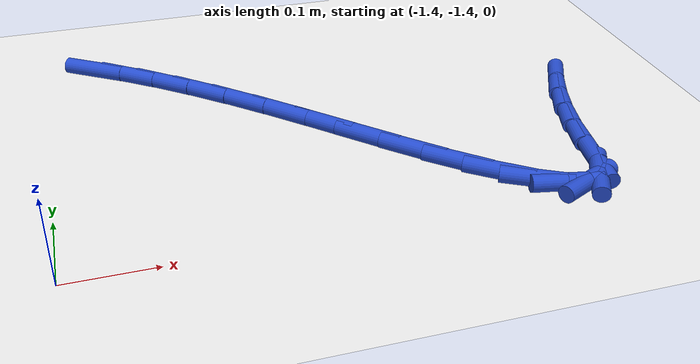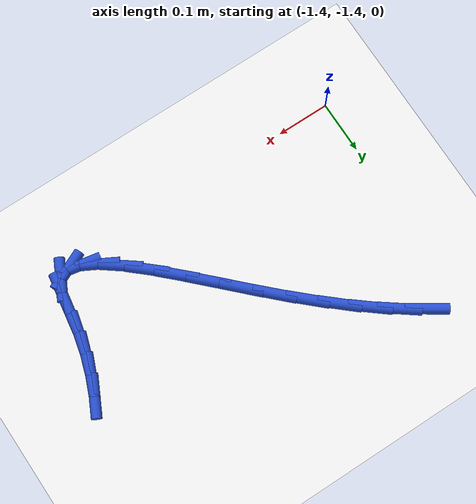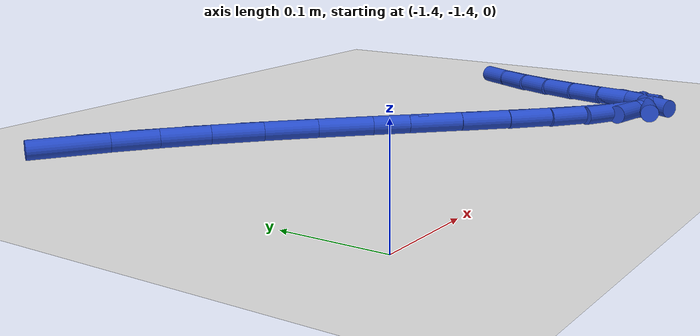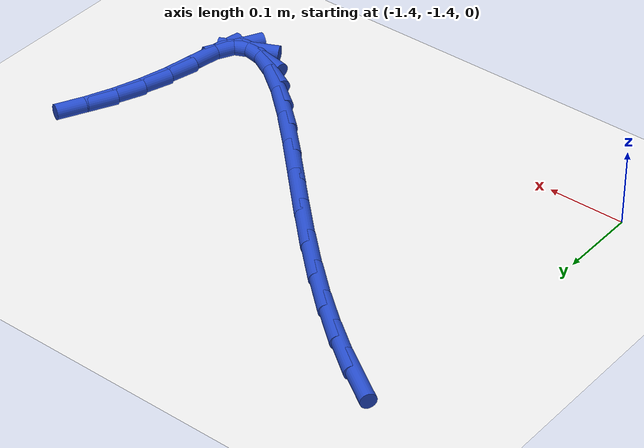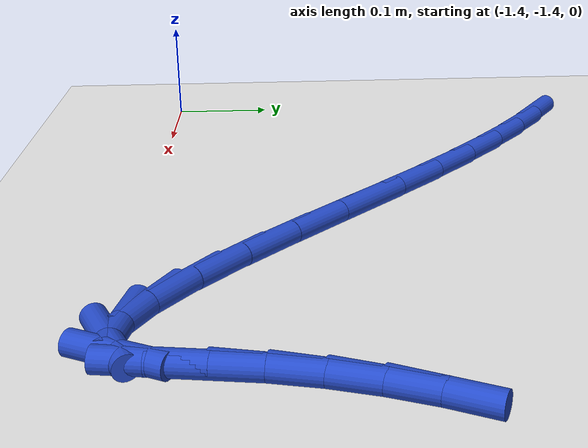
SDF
<sdf version="1.6">
 <world name="default">
  <model name="ground_plane">
   <static>1</static>
   <link name="link">
    <collision name="collision">
     <geometry><plane><normal>0 0 1</normal><size>100 100</size></plane></geometry>
     <surface><friction><ode><mu>100</mu><mu2>50</mu2></ode></friction></surface>
    </collision>
    <visual name="visual">
     <cast_shadows>0</cast_shadows>
     <geometry><plane><normal>0 0 1</normal><size>100 100</size></plane></geometry>
     <material>
      <script><uri>file://media/materials/scripts/gazebo.material</uri><name>Gazebo/WhiteGlow</name></script>
     </material>
    </visual>
   </link>
  </model>
  <model name="line">
   <link name="link_192">
    <pose>-1.3355050333427825 -0.9855317868970247 0.01 0 1.57 -0.5854688777693408</pose>
    <collision name="collision">
     <geometry><cylinder><radius>0.01</radius><length>0.08</length></cylinder></geometry>
    </collision>
    <visual name="visual">
     <material>
      <script><name>Gazebo/Blue</name><uri>file://media/materials/scripts/gazebo.material</uri></script>
     </material>
     <geometry><cylinder><radius>0.01</radius><length>0.08</length></cylinder></geometry>
    </visual>
   </link>
   <link name="link_193">
    <pose>-1.2950465536777986 -1.0123562850495074 0.01 0 1.57 -0.6411411116510758</pose>
    <collision name="collision">
     <geometry><cylinder><radius>0.01</radius><length>0.08</length></cylinder></geometry>
    </collision>
    <visual name="visual">
     <material>
      <script><name>Gazebo/Blue</name><uri>file://media/materials/scripts/gazebo.material</uri></script>
     </material>
     <geometry><cylinder><radius>0.01</radius><length>0.08</length></cylinder></geometry>
    </visual>
   </link>
   <link name="link_194">
    <pose>-1.2536578559475688 -1.0432454570876706 0.01 0 1.57 -0.6861930586813187</pose>
    <collision name="collision">
     <geometry><cylinder><radius>0.01</radius><length>0.08</length></cylinder></geometry>
    </collision>
    <visual name="visual">
     <material>
      <script><name>Gazebo/Blue</name><uri>file://media/materials/scripts/gazebo.material</uri></script>
     </material>
     <geometry><cylinder><radius>0.01</radius><length>0.08</length></cylinder></geometry>
    </visual>
   </link>
   <link name="link_195">
    <pose>-1.2115554384941478 -1.0777254831478535 0.01 0 1.57 -0.7231000235288509</pose>
    <collision name="collision">
     <geometry><cylinder><radius>0.01</radius><length>0.08</length></cylinder></geometry>
    </collision>
    <visual name="visual">
     <material>
      <script><name>Gazebo/Blue</name><uri>file://media/materials/scripts/gazebo.material</uri></script>
     </material>
     <geometry><cylinder><radius>0.01</radius><length>0.08</length></cylinder></geometry>
    </visual>
   </link>
   <link name="link_196">
    <pose>-1.1689557996595874 -1.1153225433663934 0.01 0 1.57 -0.7536413888060033</pose>
    <collision name="collision">
     <geometry><cylinder><radius>0.01</radius><length>0.08</length></cylinder></geometry>
    </collision>
    <visual name="visual">
     <material>
      <script><name>Gazebo/Blue</name><uri>file://media/materials/scripts/gazebo.material</uri></script>
     </material>
     <geometry><cylinder><radius>0.01</radius><length>0.08</length></cylinder></geometry>
    </visual>
   </link>
   <link name="link_197">
    <pose>-1.1260756609314007 -1.1555621784703125 0.01 0 1.57 -0.7765114288655772</pose>
    <collision name="collision">
     <geometry><cylinder><radius>0.01</radius><length>0.08</length></cylinder></geometry>
    </collision>
    <visual name="visual">
     <material>
      <script><name>Gazebo/Blue</name><uri>file://media/materials/scripts/gazebo.material</uri></script>
     </material>
     <geometry><cylinder><radius>0.01</radius><length>0.08</length></cylinder></geometry>
    </visual>
   </link>
   <link name="link_198">
    <pose>-1.0832487837041902 -1.1976345586727923 0.01 0 1.57 -0.786343206688715</pose>
    <collision name="collision">
     <geometry><cylinder><radius>0.01</radius><length>0.08</length></cylinder></geometry>
    </collision>
    <visual name="visual">
     <material>
      <script><name>Gazebo/Blue</name><uri>file://media/materials/scripts/gazebo.material</uri></script>
     </material>
     <geometry><cylinder><radius>0.01</radius><length>0.08</length></cylinder></geometry>
    </visual>
   </link>
   <link name="link_199">
    <pose>-1.0411175616588486 -1.2398454877259295 0.01 0 1.57 -0.7825468476852196</pose>
    <collision name="collision">
     <geometry><cylinder><radius>0.01</radius><length>0.08</length></cylinder></geometry>
    </collision>
    <visual name="visual">
     <material>
      <script><name>Gazebo/Blue</name><uri>file://media/materials/scripts/gazebo.material</uri></script>
     </material>
     <geometry><cylinder><radius>0.01</radius><length>0.08</length></cylinder></geometry>
    </visual>
   </link>
   <link name="link_200">
    <pose>-1.0003746663489927 -1.2803567012906103 0.01 0 1.57 -0.7630754309850176</pose>
    <collision name="collision">
     <geometry><cylinder><radius>0.01</radius><length>0.08</length></cylinder></geometry>
    </collision>
    <visual name="visual">
     <material>
      <script><name>Gazebo/Blue</name><uri>file://media/materials/scripts/gazebo.material</uri></script>
     </material>
     <geometry><cylinder><radius>0.01</radius><length>0.08</length></cylinder></geometry>
    </visual>
   </link>
   <link name="link_201">
    <pose>-0.9617127693282387 -1.3173299350277208 0.01 0 1.57 -0.7218958430328947</pose>
    <collision name="collision">
     <geometry><cylinder><radius>0.01</radius><length>0.08</length></cylinder></geometry>
    </collision>
    <visual name="visual">
     <material>
      <script><name>Gazebo/Blue</name><uri>file://media/materials/scripts/gazebo.material</uri></script>
     </material>
     <geometry><cylinder><radius>0.01</radius><length>0.08</length></cylinder></geometry>
    </visual>
   </link>
   <link name="link_202">
    <pose>-0.9258245421502028 -1.348926924598148 0.01 0 1.57 -0.6448039745793012</pose>
    <collision name="collision">
     <geometry><cylinder><radius>0.01</radius><length>0.08</length></cylinder></geometry>
    </collision>
    <visual name="visual">
     <material>
      <script><name>Gazebo/Blue</name><uri>file://media/materials/scripts/gazebo.material</uri></script>
     </material>
     <geometry><cylinder><radius>0.01</radius><length>0.08</length></cylinder></geometry>
    </visual>
   </link>
   <link name="link_203">
    <pose>-0.8934026563685012 -1.373309405662777 0.01 0 1.57 -0.4969875359302254</pose>
    <collision name="collision">
     <geometry><cylinder><radius>0.01</radius><length>0.08</length></cylinder></geometry>
    </collision>
    <visual name="visual">
     <material>
      <script><name>Gazebo/Blue</name><uri>file://media/materials/scripts/gazebo.material</uri></script>
     </material>
     <geometry><cylinder><radius>0.01</radius><length>0.08</length></cylinder></geometry>
    </visual>
   </link>
   <link name="link_204">
    <pose>-0.8651397835367504 -1.388639113882495 0.01 0 1.57 -0.18737213298545582</pose>
    <collision name="collision">
     <geometry><cylinder><radius>0.01</radius><length>0.08</length></cylinder></geometry>
    </collision>
    <visual name="visual">
     <material>
      <script><name>Gazebo/Blue</name><uri>file://media/materials/scripts/gazebo.material</uri></script>
     </material>
     <geometry><cylinder><radius>0.01</radius><length>0.08</length></cylinder></geometry>
    </visual>
   </link>
   <link name="link_205">
    <pose>-0.8417285952085667 -1.3930777849181877 0.01 0 1.57 0.4344544993686898</pose>
    <collision name="collision">
     <geometry><cylinder><radius>0.01</radius><length>0.08</length></cylinder></geometry>
    </collision>
    <visual name="visual">
     <material>
      <script><name>Gazebo/Blue</name><uri>file://media/materials/scripts/gazebo.material</uri></script>
     </material>
     <geometry><cylinder><radius>0.01</radius><length>0.08</length></cylinder></geometry>
    </visual>
   </link>
   <link name="link_206">
    <pose>-0.8238617629375666 -1.3847871544307422 0.01 0 1.57 1.1001490136583973</pose>
    <collision name="collision">
     <geometry><cylinder><radius>0.01</radius><length>0.08</length></cylinder></geometry>
    </collision>
    <visual name="visual">
     <material>
      <script><name>Gazebo/Blue</name><uri>file://media/materials/scripts/gazebo.material</uri></script>
     </material>
     <geometry><cylinder><radius>0.01</radius><length>0.08</length></cylinder></geometry>
    </visual>
   </link>
   <link name="link_207">
    <pose>-0.8122319582773664 -1.361928958081045 0.01 0 1.57 1.4051625109527073</pose>
    <collision name="collision">
     <geometry><cylinder><radius>0.01</radius><length>0.08</length></cylinder></geometry>
    </collision>
    <visual name="visual">
     <material>
      <script><name>Gazebo/Blue</name><uri>file://media/materials/scripts/gazebo.material</uri></script>
     </material>
     <geometry><cylinder><radius>0.01</radius><length>0.08</length></cylinder></geometry>
    </visual>
   </link>
   <link name="link_208">
    <pose>-0.8061143864344436 -1.325333019477937 0.01 0 1.57 1.4077943738959988</pose>
    <collision name="collision">
     <geometry><cylinder><radius>0.01</radius><length>0.08</length></cylinder></geometry>
    </collision>
    <visual name="visual">
     <material>
      <script><name>Gazebo/Blue</name><uri>file://media/materials/scripts/gazebo.material</uri></script>
     </material>
     <geometry><cylinder><radius>0.01</radius><length>0.08</length></cylinder></geometry>
    </visual>
   </link>
   <link name="link_209">
    <pose>-0.7995896399437109 -1.285659524508133 0.01 0 1.57 1.328980426299023</pose>
    <collision name="collision">
     <geometry><cylinder><radius>0.01</radius><length>0.08</length></cylinder></geometry>
    </collision>
    <visual name="visual">
     <material>
      <script><name>Gazebo/Blue</name><uri>file://media/materials/scripts/gazebo.material</uri></script>
     </material>
     <geometry><cylinder><radius>0.01</radius><length>0.08</length></cylinder></geometry>
    </visual>
   </link>
   <link name="link_210">
    <pose>-0.79019073459827 -1.2475520756523408 0.01 0 1.57 1.2512321756335003</pose>
    <collision name="collision">
     <geometry><cylinder><radius>0.01</radius><length>0.08</length></cylinder></geometry>
    </collision>
    <visual name="visual">
     <material>
      <script><name>Gazebo/Blue</name><uri>file://media/materials/scripts/gazebo.material</uri></script>
     </material>
     <geometry><cylinder><radius>0.01</radius><length>0.08</length></cylinder></geometry>
    </visual>
   </link>
   <link name="link_211">
    <pose>-0.7780821633133058 -1.2109598712108491 0.01 0 1.57 1.1766538601427161</pose>
    <collision name="collision">
     <geometry><cylinder><radius>0.01</radius><length>0.08</length></cylinder></geometry>
    </collision>
    <visual name="visual">
     <material>
      <script><name>Gazebo/Blue</name><uri>file://media/materials/scripts/gazebo.material</uri></script>
     </material>
     <geometry><cylinder><radius>0.01</radius><length>0.08</length></cylinder></geometry>
    </visual>
   </link>
   <link name="link_212">
    <pose>-0.7634536271001573 -1.1757871396868986 0.01 0 1.57 1.1063387404154055</pose>
    <collision name="collision">
     <geometry><cylinder><radius>0.01</radius><length>0.08</length></cylinder></geometry>
    </collision>
    <visual name="visual">
     <material>
      <script><name>Gazebo/Blue</name><uri>file://media/materials/scripts/gazebo.material</uri></script>
     </material>
     <geometry><cylinder><radius>0.01</radius><length>0.08</length></cylinder></geometry>
    </visual>
   </link>
  </model>
 </world>
</sdf>
